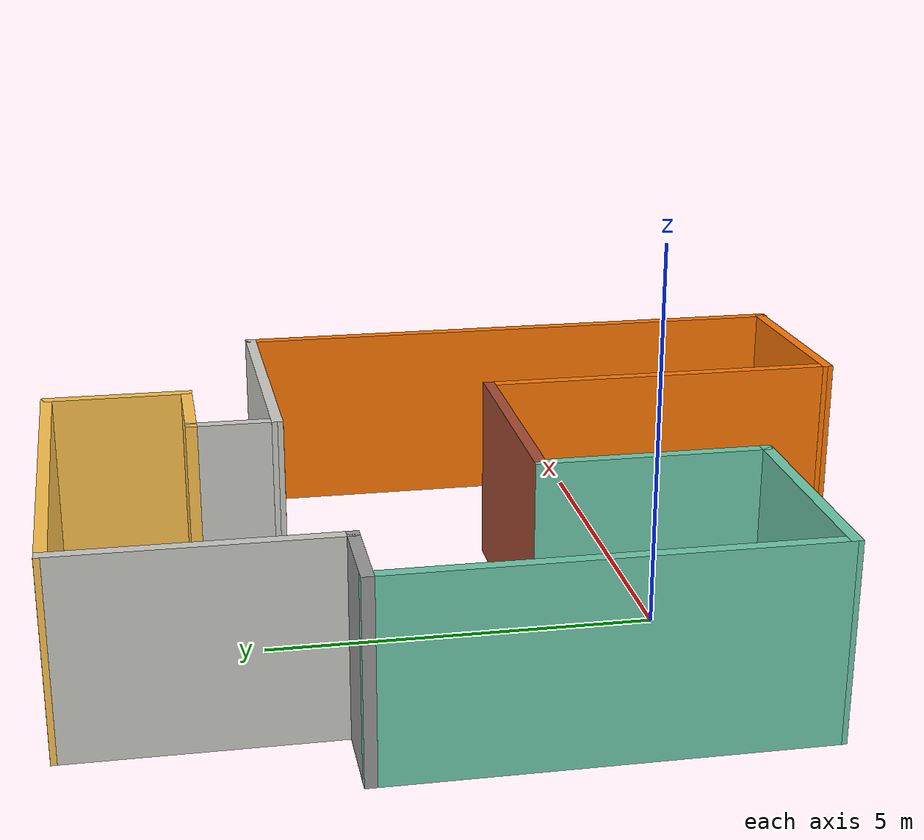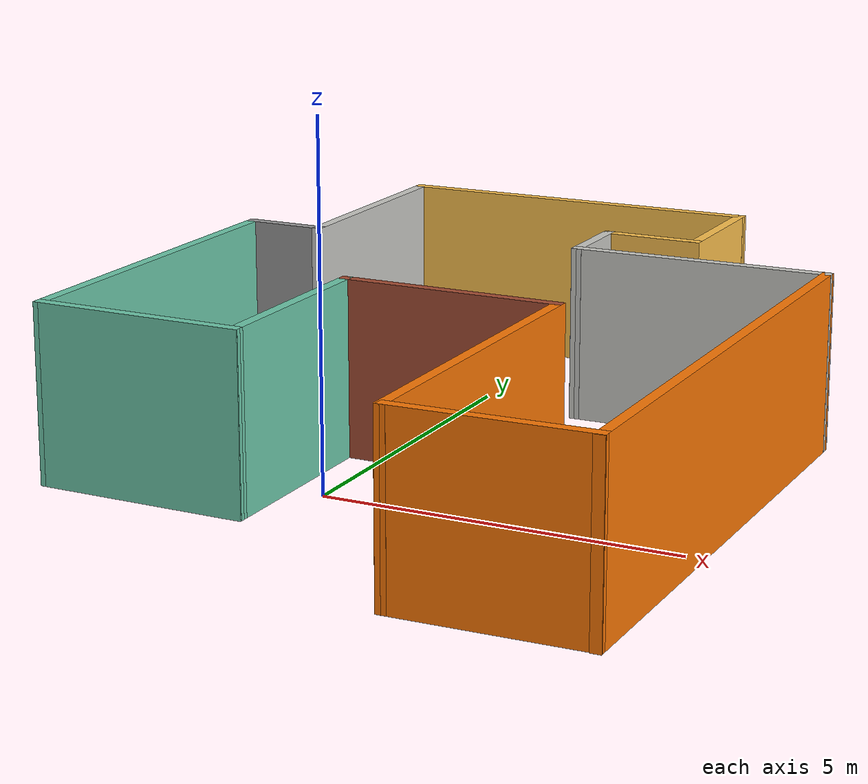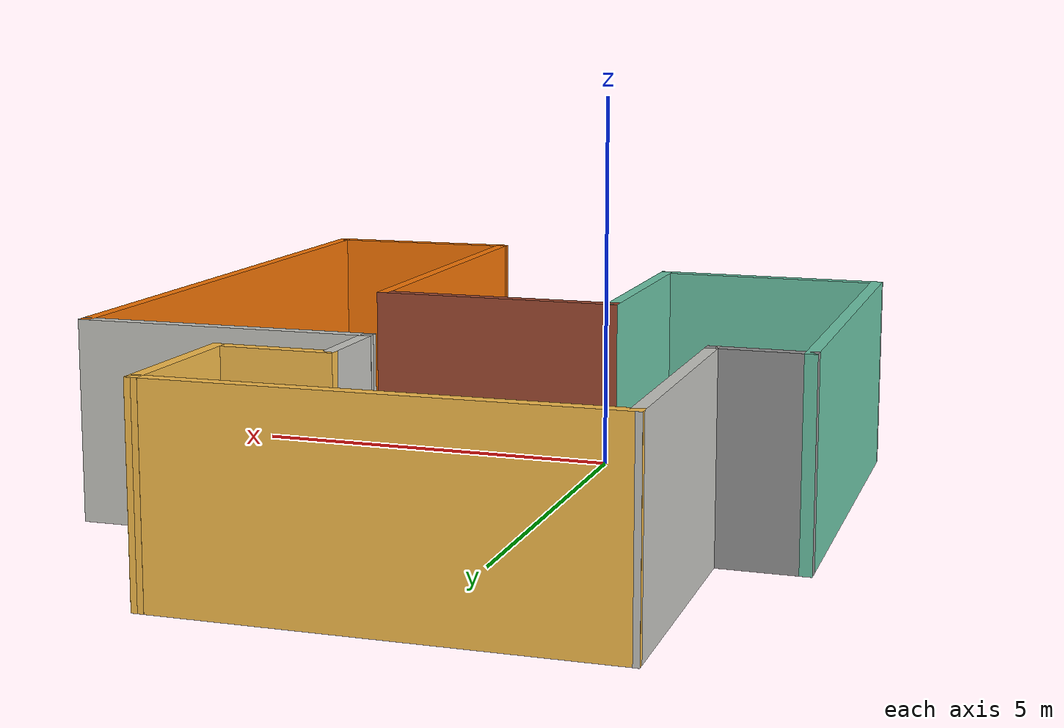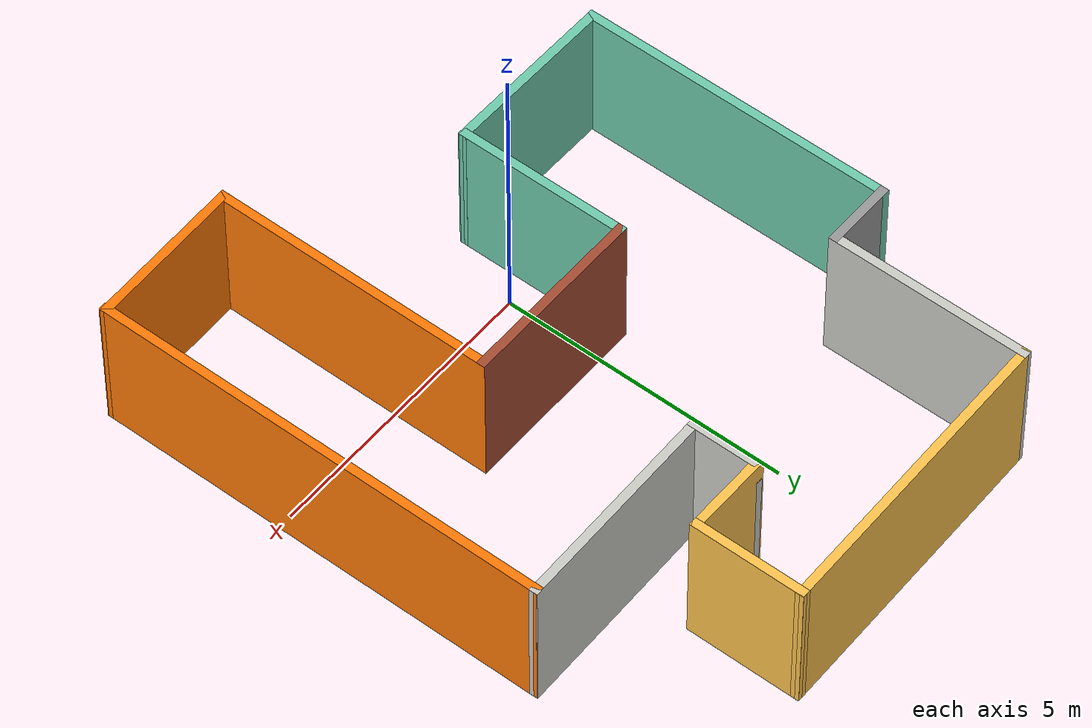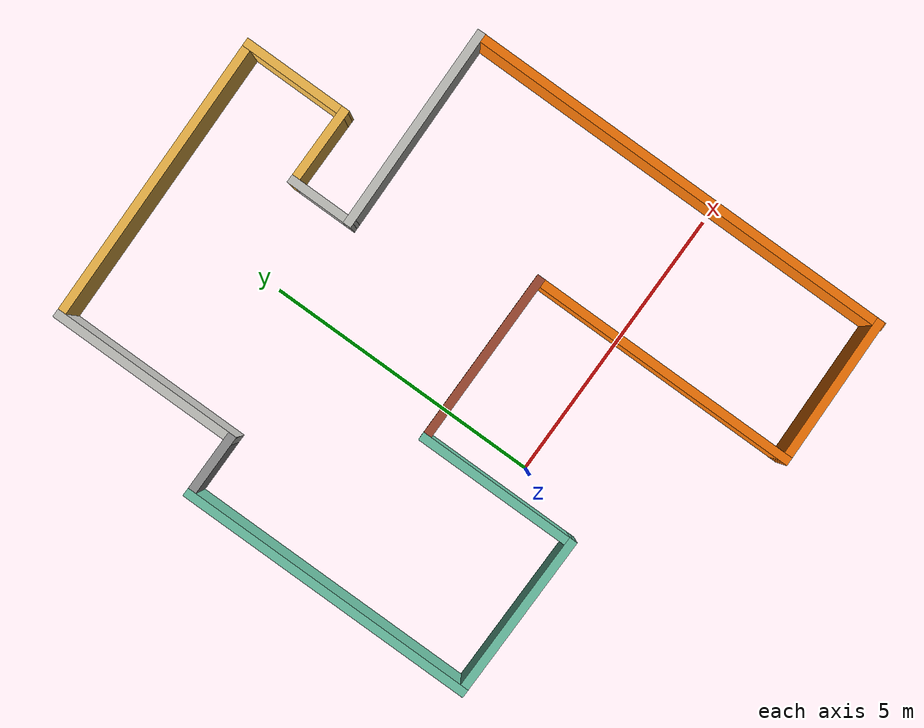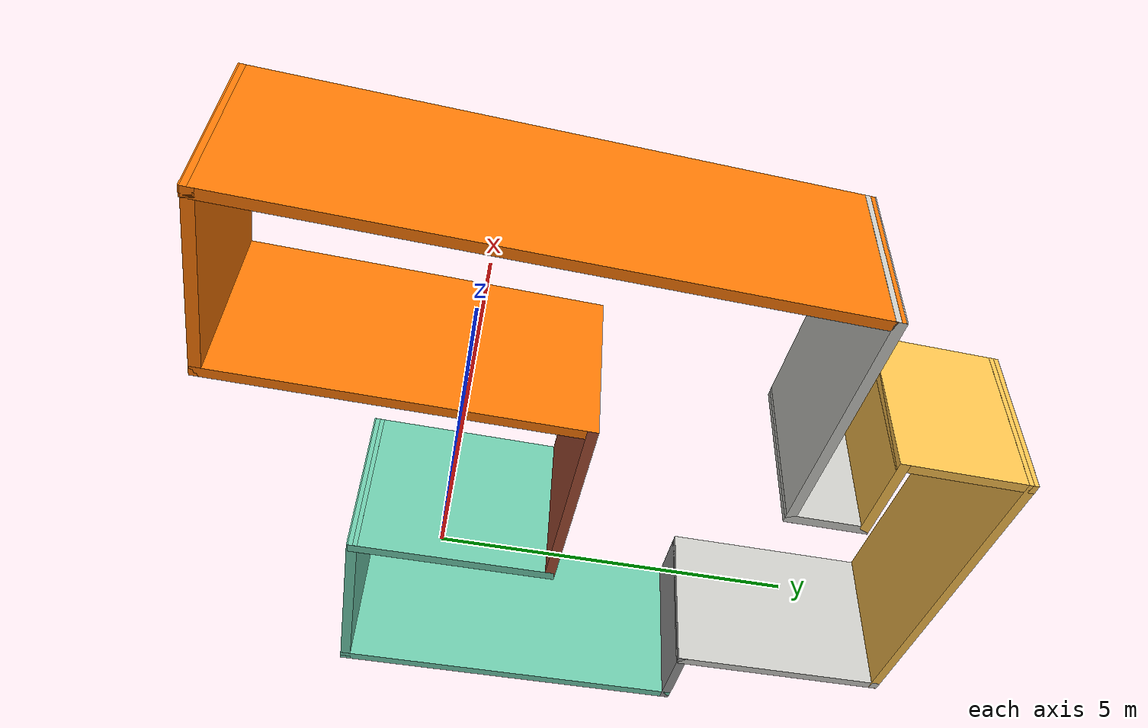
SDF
<?xml version='1.0'?>
<sdf version='1.6'>
  <model name='easy'>
    <pose frame=''>0.869114 2.18201 0 0 -0 0</pose>
    <link name='Wall_1'>
      <collision name='Wall_1_Collision'>
        <geometry>
          <box>
            <size>5.5 0.15 2.5</size>
          </box>
        </geometry>
        <pose frame=''>0 0 1.25 0 -0 0</pose>
      </collision>
      <visual name='Wall_1_Visual'>
        <pose frame=''>0 0 1.25 0 -0 0</pose>
        <geometry>
          <box>
            <size>5.5 0.15 2.5</size>
          </box>
        </geometry>
        <material>
          <script>
            <uri>file://media/materials/scripts/gazebo.material</uri>
            <name>Gazebo/Grey</name>
          </script>
          <ambient>0.435294 0.796078 0.67451 1</ambient>
        </material>
        <meta>
          <layer>0</layer>
        </meta>
      </visual>
      <pose frame=''>-4.31567 -0.707217 0 0 0 -1.5708</pose>
    </link>
    <link name='Wall_10'>
      <collision name='Wall_10_Collision'>
        <geometry>
          <box>
            <size>3.76202 0.15 2.5</size>
          </box>
        </geometry>
        <pose frame=''>0 0 1.25 0 -0 0</pose>
      </collision>
      <visual name='Wall_10_Visual'>
        <pose frame=''>0 0 1.25 0 -0 0</pose>
        <geometry>
          <box>
            <size>3.76202 0.15 2.5</size>
          </box>
        </geometry>
        <material>
          <script>
            <uri>file://media/materials/scripts/gazebo.material</uri>
            <name>Gazebo/CeilingTiled</name>
          </script>
          <ambient>1 1 1 1</ambient>
        </material>
        <meta>
          <layer>0</layer>
        </meta>
      </visual>
      <pose frame=''>2.50896 2.48114 0 0 0 -3.12451</pose>
    </link>
    <link name='Wall_11'>
      <collision name='Wall_11_Collision'>
        <geometry>
          <box>
            <size>1.25 0.15 2.5</size>
          </box>
        </geometry>
        <pose frame=''>0 0 1.25 0 -0 0</pose>
      </collision>
      <visual name='Wall_11_Visual'>
        <pose frame=''>0 0 1.25 0 -0 0</pose>
        <geometry>
          <box>
            <size>1.25 0.15 2.5</size>
          </box>
        </geometry>
        <material>
          <script>
            <uri>file://media/materials/scripts/gazebo.material</uri>
            <name>Gazebo/CeilingTiled</name>
          </script>
          <ambient>1 1 1 1</ambient>
        </material>
        <meta>
          <layer>0</layer>
        </meta>
      </visual>
      <pose frame=''>0.703214 3.00029 0 0 -0 1.5708</pose>
    </link>
    <link name='Wall_12'>
      <collision name='Wall_12_Collision'>
        <geometry>
          <box>
            <size>1.5 0.15 2.5</size>
          </box>
        </geometry>
        <pose frame=''>0 0 1.25 0 -0 0</pose>
      </collision>
      <visual name='Wall_12_Visual'>
        <pose frame=''>0 0 1.25 0 -0 0</pose>
        <geometry>
          <box>
            <size>1.5 0.15 2.5</size>
          </box>
        </geometry>
        <material>
          <script>
            <uri>file://media/materials/scripts/gazebo.material</uri>
            <name>Gazebo/Grey</name>
          </script>
          <ambient>1 0.764706 0.305882 1</ambient>
        </material>
        <meta>
          <layer>0</layer>
        </meta>
      </visual>
      <pose frame=''>1.37821 3.55029 0 0 -0 0</pose>
    </link>
    <link name='Wall_13'>
      <collision name='Wall_13_Collision'>
        <geometry>
          <box>
            <size>2 0.15 2.5</size>
          </box>
        </geometry>
        <pose frame=''>0 0 1.25 0 -0 0</pose>
      </collision>
      <visual name='Wall_13_Visual'>
        <pose frame=''>0 0 1.25 0 -0 0</pose>
        <geometry>
          <box>
            <size>2 0.15 2.5</size>
          </box>
        </geometry>
        <material>
          <script>
            <uri>file://media/materials/scripts/gazebo.material</uri>
            <name>Gazebo/Grey</name>
          </script>
          <ambient>1 0.764706 0.305882 1</ambient>
        </material>
        <meta>
          <layer>0</layer>
        </meta>
      </visual>
      <pose frame=''>2.05321 4.47529 0 0 -0 1.5708</pose>
    </link>
    <link name='Wall_19'>
      <collision name='Wall_19_Collision'>
        <geometry>
          <box>
            <size>1.25 0.15 2.5</size>
          </box>
        </geometry>
        <pose frame=''>0 0 1.25 0 -0 0</pose>
      </collision>
      <visual name='Wall_19_Visual'>
        <pose frame=''>0 0 1.25 0 -0 0</pose>
        <geometry>
          <box>
            <size>1.25 0.15 2.5</size>
          </box>
        </geometry>
        <material>
          <script>
            <uri>file://media/materials/scripts/gazebo.material</uri>
            <name>Gazebo/Grey</name>
          </script>
          <ambient>1 1 1 1</ambient>
        </material>
        <meta>
          <layer>0</layer>
        </meta>
      </visual>
      <pose frame=''>-3.76567 1.96778 0 0 -0 0</pose>
    </link>
    <link name='Wall_2'>
      <collision name='Wall_2_Collision'>
        <geometry>
          <box>
            <size>3.06888 0.15 2.5</size>
          </box>
        </geometry>
        <pose frame=''>0 0 1.25 0 -0 0</pose>
      </collision>
      <visual name='Wall_2_Visual'>
        <pose frame=''>0 0 1.25 0 -0 0</pose>
        <geometry>
          <box>
            <size>3.06888 0.15 2.5</size>
          </box>
        </geometry>
        <material>
          <script>
            <uri>file://media/materials/scripts/gazebo.material</uri>
            <name>Gazebo/Grey</name>
          </script>
          <ambient>0.435294 0.796078 0.67451 1</ambient>
        </material>
        <meta>
          <layer>0</layer>
        </meta>
      </visual>
      <pose frame=''>-2.85623 -3.39971 0 0 0 -0.011984</pose>
    </link>
    <link name='Wall_20'>
      <collision name='Wall_20_Collision'>
        <geometry>
          <box>
            <size>3.5 0.15 2.5</size>
          </box>
        </geometry>
        <pose frame=''>0 0 1.25 0 -0 0</pose>
      </collision>
      <visual name='Wall_20_Visual'>
        <pose frame=''>0 0 1.25 0 -0 0</pose>
        <geometry>
          <box>
            <size>3.5 0.15 2.5</size>
          </box>
        </geometry>
        <material>
          <script>
            <uri>file://media/materials/scripts/gazebo.material</uri>
            <name>Gazebo/CeilingTiled</name>
          </script>
          <ambient>1 1 1 1</ambient>
        </material>
        <meta>
          <layer>0</layer>
        </meta>
      </visual>
      <pose frame=''>-3.21567 3.64278 0 0 -0 1.5708</pose>
    </link>
    <link name='Wall_21'>
      <collision name='Wall_21_Collision'>
        <geometry>
          <box>
            <size>5.41953 0.15 2.5</size>
          </box>
        </geometry>
        <pose frame=''>0 0 1.25 0 -0 0</pose>
      </collision>
      <visual name='Wall_21_Visual'>
        <pose frame=''>0 0 1.25 0 -0 0</pose>
        <geometry>
          <box>
            <size>5.41953 0.15 2.5</size>
          </box>
        </geometry>
        <material>
          <script>
            <uri>file://media/materials/scripts/gazebo.material</uri>
            <name>Gazebo/Grey</name>
          </script>
          <ambient>1 0.764706 0.305882 1</ambient>
        </material>
        <meta>
          <layer>0</layer>
        </meta>
      </visual>
      <pose frame=''>-0.581227 5.35904 0 0 -0 0.015659</pose>
    </link>
    <link name='Wall_3'>
      <collision name='Wall_3_Collision'>
        <geometry>
          <box>
            <size>3 0.15 2.5</size>
          </box>
        </geometry>
        <pose frame=''>0 0 1.25 0 -0 0</pose>
      </collision>
      <visual name='Wall_3_Visual'>
        <pose frame=''>0 0 1.25 0 -0 0</pose>
        <geometry>
          <box>
            <size>3 0.15 2.5</size>
          </box>
        </geometry>
        <material>
          <script>
            <uri>file://media/materials/scripts/gazebo.material</uri>
            <name>Gazebo/Grey</name>
          </script>
          <ambient>0.435294 0.796078 0.67451 1</ambient>
        </material>
        <meta>
          <layer>0</layer>
        </meta>
      </visual>
      <pose frame=''>-1.39679 -1.97471 0 0 -0 1.5708</pose>
    </link>
    <link name='Wall_6'>
      <collision name='Wall_6_Collision'>
        <geometry>
          <box>
            <size>3.25 0.15 2.5</size>
          </box>
        </geometry>
        <pose frame=''>0 0 1.25 0 -0 0</pose>
      </collision>
      <visual name='Wall_6_Visual'>
        <pose frame=''>0 0 1.25 0 -0 0</pose>
        <geometry>
          <box>
            <size>3.25 0.15 2.5</size>
          </box>
        </geometry>
        <material>
          <script>
            <uri>file://media/materials/scripts/gazebo.material</uri>
            <name>Gazebo/Bricks</name>
          </script>
          <ambient>1 1 1 1</ambient>
        </material>
        <meta>
          <layer>0</layer>
        </meta>
      </visual>
      <pose frame=''>0.153214 -0.549707 0 0 -0 0</pose>
    </link>
    <link name='Wall_7'>
      <collision name='Wall_7_Collision'>
        <geometry>
          <box>
            <size>5 0.15 2.5</size>
          </box>
        </geometry>
        <pose frame=''>0 0 1.25 0 -0 0</pose>
      </collision>
      <visual name='Wall_7_Visual'>
        <pose frame=''>0 0 1.25 0 -0 0</pose>
        <geometry>
          <box>
            <size>5 0.15 2.5</size>
          </box>
        </geometry>
        <material>
          <script>
            <uri>file://media/materials/scripts/gazebo.material</uri>
            <name>Gazebo/Grey</name>
          </script>
          <ambient>0.996078 0.47451 0.0196078 1</ambient>
        </material>
        <meta>
          <layer>0</layer>
        </meta>
      </visual>
      <pose frame=''>1.70321 -2.97471 0 0 0 -1.5708</pose>
    </link>
    <link name='Wall_8'>
      <collision name='Wall_8_Collision'>
        <geometry>
          <box>
            <size>2.76222 0.15 2.5</size>
          </box>
        </geometry>
        <pose frame=''>0 0 1.25 0 -0 0</pose>
      </collision>
      <visual name='Wall_8_Visual'>
        <pose frame=''>0 0 1.25 0 -0 0</pose>
        <geometry>
          <box>
            <size>2.76222 0.15 2.5</size>
          </box>
        </geometry>
        <material>
          <script>
            <uri>file://media/materials/scripts/gazebo.material</uri>
            <name>Gazebo/Grey</name>
          </script>
          <ambient>0.996078 0.47451 0.0196078 1</ambient>
        </material>
        <meta>
          <layer>0</layer>
        </meta>
      </visual>
      <pose frame=''>3.00896 -5.36886 0 0 -0 0.023623</pose>
    </link>
    <link name='Wall_9'>
      <collision name='Wall_9_Collision'>
        <geometry>
          <box>
            <size>8 0.15 2.5</size>
          </box>
        </geometry>
        <pose frame=''>0 0 1.25 0 -0 0</pose>
      </collision>
      <visual name='Wall_9_Visual'>
        <pose frame=''>0 0 1.25 0 -0 0</pose>
        <geometry>
          <box>
            <size>8 0.15 2.5</size>
          </box>
        </geometry>
        <material>
          <script>
            <uri>file://media/materials/scripts/gazebo.material</uri>
            <name>Gazebo/Grey</name>
          </script>
          <ambient>0.996078 0.47451 0.0196078 1</ambient>
        </material>
        <meta>
          <layer>0</layer>
        </meta>
      </visual>
      <pose frame=''>4.31471 -1.4283 0 0 -0 1.5708</pose>
    </link>
    <static>1</static>
  </model>
</sdf>
